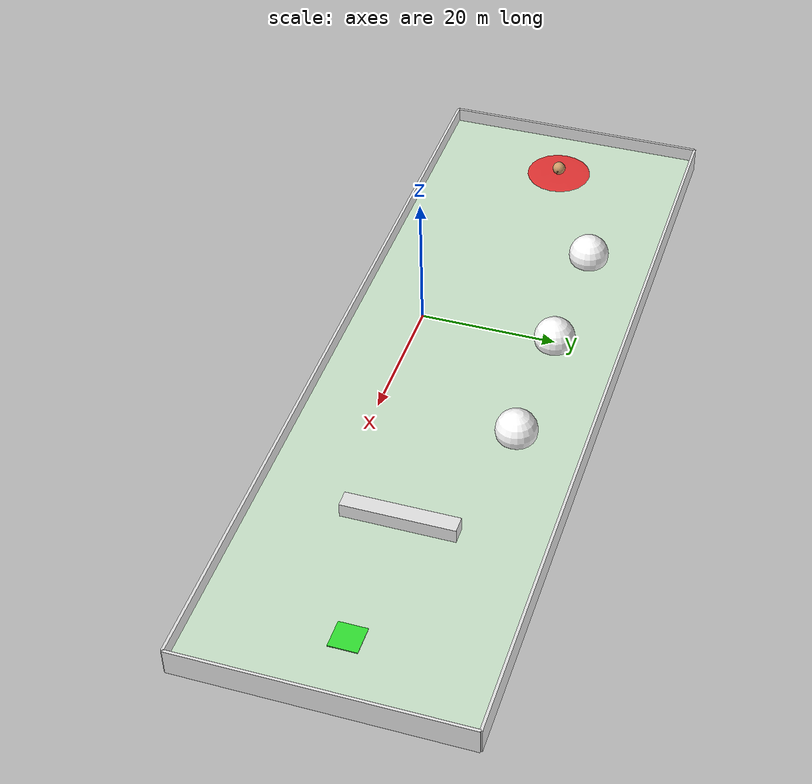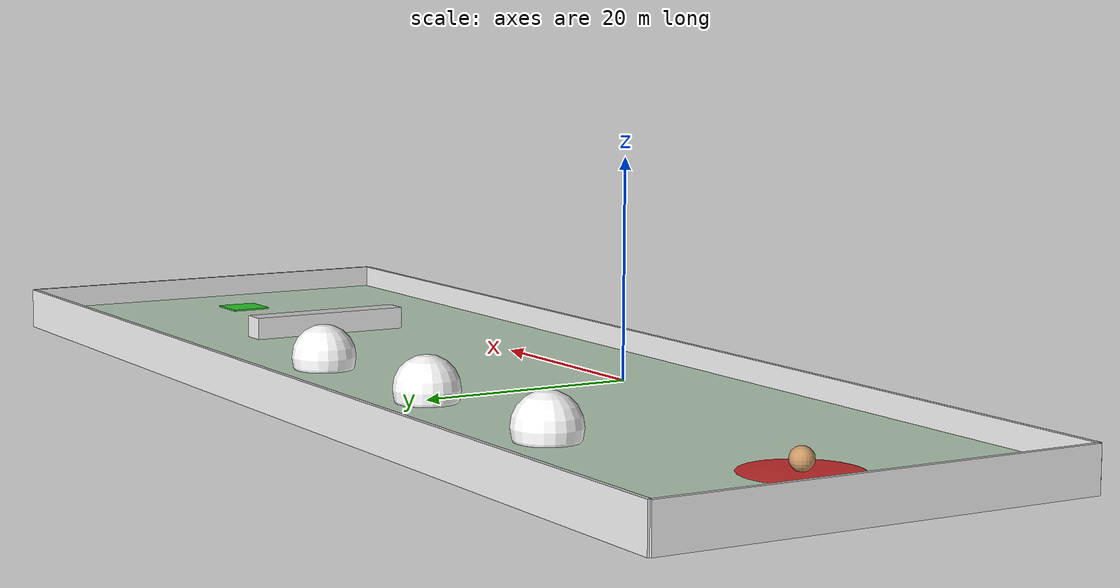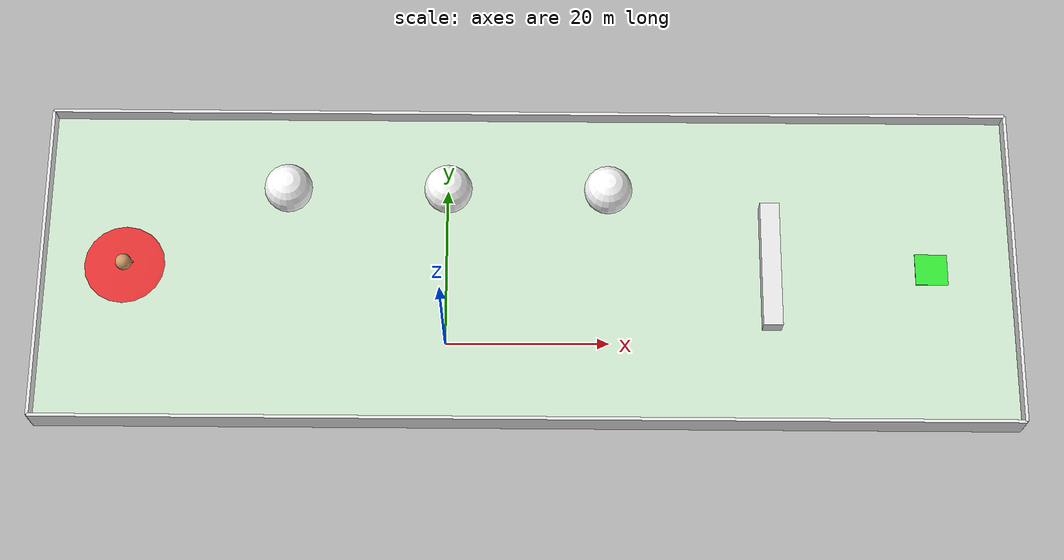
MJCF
<mujoco model="point">
  <compiler angle="degree" coordinate="local" inertiafromgeom="true"/>
  <option integrator="RK4" timestep="0.01"/>
  <default>
    <joint armature="1" damping="1" limited="true"/>
    <geom conaffinity="0" condim="3" density="5.0" friction="1 0.5 0.5" margin="0.01" rgba="0.8 0.6 0.4 1" material="geom"/>
  </default>
    <asset>
        <texture name="monstertex" type="cube" file="monstertex.png" gridsize="3 4" gridlayout=".U..LDRB.F.."/>
        <texture name="slowtex" type="2d" builtin="none" file="slow_sign.png" width="100" height="100"/>
        <texture name="fasttex" type="2d" builtin="none" file="fast_sign.png" width="100" height="100"/>
        <texture type="skybox" builtin="gradient" rgb1=".1 .12 .15" rgb2="0 0 0" width="100" height="100"/>
        <texture builtin="checker" height="100" name="texplane" rgb1=".1 .1 .1" rgb2=".15 .15 0.15" type="2d" width="100"/>
        <material name="MatPlane" reflectance="0.5" shininess="1" specular="1" texrepeat="50 50" texture="texplane"/>
        <texture builtin="flat" height="1278" mark="cross" markrgb="1 1 1" name="texgeom" random="0.01" rgb1="0.8 0.6 0.4" rgb2="0.8 0.6 0.4" type="cube" width="127"/>
        <material name="monstermat" texture="monstertex" texuniform="true"/>
        <material name="slowmat" texture="slowtex" texuniform="true" texrepeat="0.2 0.2"/>
        <material name="fastmat" texture="fasttex" texuniform="true" texrepeat="0.2 0.2"/>
        <material name="geom" texture="texgeom" texuniform="true"/>
    </asset>
  <worldbody>
    <light cutoff="100" diffuse="1 1 1" dir="-0 0 -1.3" directional="true" exponent="1" pos="0 0 1.3" specular=".1 .1 .1"/>
    <geom conaffinity="1" condim="3" material="MatPlane" name="floor" pos="10 10 0" rgba="0.8 0.9 0.8 1" size="60 20 10" type="plane"/>
    <body name="torso" pos="-40 10 0">
      <geom name="pointbody" conaffinity="1" contype="1" type="sphere" size="1" pos="0 0 1.0" />
      <geom name="pointarrow" type="box" size="0.6 0.1 0.1" pos="0.6 0 1.0" />
      <joint name='ballx' type='slide' axis='1 0 0' pos='0 0 0' range ="-1000 1000"/>
      <joint name='bally' type='slide' axis='0 1 0' pos='0 0 0'  range ="-1000 1000" />
      <joint name='rot' type='hinge' axis='0 0 1' pos='0 0 0' limited="false" />
    </body>

    <body>
    <geom pos="-40 10 0" conaffinity="1" contype="1" rgba="0.9 0.2 0.2 1" size="5 5 0.1" type="ellipsoid"/>
    </body>

    <geom pos="10 -10 0" conaffinity="1" contype="1" rgba="0.9 0.9 0.9 1" size="60 0.2 2" type="box"/>
    <geom pos="10 30 0" conaffinity="1" contype="1" rgba="0.9 0.9 0.9 1" size="60 0.2 2" type="box"/>
    <geom pos="-50 10 0" conaffinity="1" contype="1" rgba="0.9 0.9 0.9 1" size="0.2 20 2" type="box"/>
    <geom pos="70 10 0" conaffinity="1" contype="1" rgba="0.9 0.9 0.9 1" size="0.2 20 2" type="box"/>

    <!-- the monster -->

    <body name="monster1" pos="-20 20 0">
      <geom pos="0 0 1" material="monstermat" conaffinity="1" rgba="1 1 1 1" size="3 3 3" type="ellipsoid"/>
      <joint armature="0" axis="1 0 0" damping="0" limited="false" name="horiz" pos="0 0 0" stiffness="0" type="slide"/>
      <joint armature="0" axis="0 1 0" damping="0" limited="false" name="vert" pos="0 0 0" stiffness="0" type="slide"/>
    </body>

    <body name="monster2" pos="0 20 0">
      <geom pos="0 0 1" material="monstermat" conaffinity="1" rgba="1 1 1 1" size="3 3 3" type="ellipsoid"/>
      <joint armature="0" axis="1 0 0" damping="0" limited="false" name="horiz1" pos="0 0 0" stiffness="0" type="slide"/>
      <joint armature="0" axis="0 1 0" damping="0" limited="false" name="vert1" pos="0 0 0" stiffness="0" type="slide"/>
    </body>

    <body name="monster3" pos="20 20 0">
      <geom pos="0 0 1" material="monstermat" conaffinity="1" rgba="1 1 1 1" size="3 3 3" type="ellipsoid"/>
      <joint armature="0" axis="1 0 0" damping="0" limited="false" name="horiz2" pos="0 0 0" stiffness="0" type="slide"/>
      <joint armature="0" axis="0 1 0" damping="0" limited="false" name="vert2" pos="0 0 0" stiffness="0" type="slide"/>
    </body>

    <body name="monster4" pos="20 10 0">
    <geom pos="20 0 0" conaffinity="1" contype="1" rgba="0.9 0.9 0.9 1" size="1.2 8 2" type="box"/>
    <joint armature="0" axis="1 0 0" damping="0" limited="false" name="horiz4" pos="0 0 0" stiffness="0" type="slide"/>
    <joint armature="0" axis="0 1 0" damping="0" limited="false" name="vert4" pos="0 0 0" stiffness="0" type="slide"/>
    </body>

    <body>
    <geom pos="-20 0 2" conaffinity="1" contype="1" material="slowmat" size="4 4 0.1" type="plane"/>
    </body>

    <body>
    <geom pos="0 0 2" conaffinity="1" contype="1" material="fastmat" size="4 4 0.1" type="plane"/>
    </body>

    <body>
    <geom pos="20 0 2" conaffinity="1" contype="1" material="slowmat" size="4 4 0.1" type="plane"/>
    </body>

    <geom pos="60 10 -0.1" conaffinity="1" rgba="0.2 0.9 0.2 1" size="2 2 0.11" type="box"/>

  </worldbody>
  <actuator>
    <motor joint='ballx' ctrlrange="-1 1" ctrllimited="true" gear="1.0" />
    <motor joint='rot' ctrlrange="-1 1" ctrllimited="true" gear="0.25" />
  </actuator>
</mujoco>
